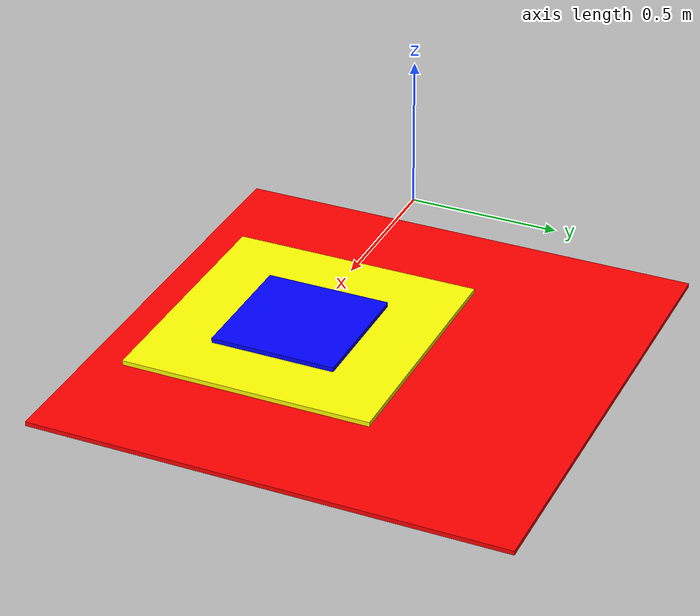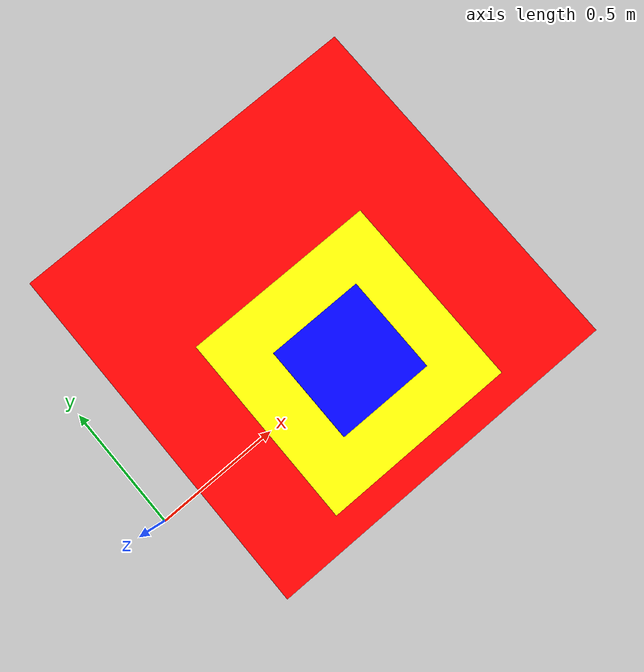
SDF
<?xml version="1.0" ?>
<sdf version="1.4">
  <!-- We use a custom world for the rrbot so that the camera angle is launched correctly -->

  <world name="default">

    <physics type="ode">
      <real_time_update_rate>1400</real_time_update_rate>
      <max_step_size>0.00075</max_step_size>
    </physics>

    <include>
      <uri>model://ground_plane</uri>
    </include>

    <include>
      <uri>model://FIRA_Ground</uri>
      <pose>1.75 0.15 0.001 0.0 0.0 1.5708</pose>
    </include>

    <!-- Global light source -->
    <include>
      <uri>model://sun</uri>
    </include>

    <include>
      <uri>model://red_box</uri>
      <pose>0.914738 0.25296 0.007476 0 0 0</pose>
    </include>

    <include>
      <uri>model://yellow_box</uri>
      <pose>0.888864 0.013663 0.022327 0 0 0</pose>
    </include>

    <include>
      <uri>model://blue_box</uri>
      <pose>0.892599 0.010009 0.037287 0 0 0</pose>
    </include>

    <!--plugin name="gazebo_ros_control" filename="libgazebo_ros_control.so"/-->
    <!--plugin name="kidsize" filename="libkidsize.so"/-->
  </world>
</sdf>

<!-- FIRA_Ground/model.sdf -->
<sdf version="1.4">
  <model name="FIRA_Ground">
    <pose>0 0 0.0001  0 0 0</pose>
     <static>true</static>
    <link name="link">
      <collision name="collision">
        <geometry>
          <mesh>
            <uri>model://FIRA_Ground/field_0407.DAE</uri>
          </mesh>
        </geometry>
      </collision>
      <visual name="visual">
        <geometry>
          <mesh>
            <uri>model://FIRA_Ground/field_0407.DAE</uri>
          </mesh>
        </geometry>
      </visual>
    </link>
  </model>
</sdf>

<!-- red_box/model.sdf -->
<sdf version='1.6'>
  <model name='red_box'>
    <link name='link'>
      <inertial>
        <mass>230.625</mass>
        <inertia>
          <ixx>43.2465</ixx>
          <ixy>0</ixy>
          <ixz>0</ixz>
          <iyy>43.2465</iyy>
          <iyz>0</iyz>
          <izz>86.4844</izz>
        </inertia>
        <pose frame=''>0 0 0 0 0 0</pose>
      </inertial>
      <self_collide>0</self_collide>
      <enable_wind>0</enable_wind>
      <kinematic>0</kinematic>
      <pose frame=''>0 0 0 0 0 0</pose>
      <gravity>1</gravity>
      <visual name='visual'>
        <geometry>
          <box>
            <size>1.5 1.5 0.015</size>
          </box>
        </geometry>
        <material>
          <script>
            <name>Gazebo/Grey</name>
            <uri>file://media/materials/scripts/gazebo.material</uri>
          </script>
          <shader type='pixel'>
            <normal_map>__default__</normal_map>
          </shader>
          <ambient>1 0 0 1</ambient>
          <diffuse>1 0 0 1</diffuse>
          <specular>0.01 0.01 0.01 1</specular>
          <emissive>0 0 0 1</emissive>
        </material>
        <pose frame=''>0 0 0 0 -0 0</pose>
        <transparency>0</transparency>
        <cast_shadows>1</cast_shadows>
      </visual>
      <collision name='collision'>
        <laser_retro>0</laser_retro>
        <max_contacts>10</max_contacts>
        <pose frame=''>0 0 0 0 -0 0</pose>
        <geometry>
          <box>
            <size>1.5 1.5 0.015</size>
          </box>
        </geometry>
        <surface>
          <friction>
            <ode>
              <mu>100</mu>
              <mu2>100</mu2>
              <fdir1>0 0 0</fdir1>
              <slip1>0</slip1>
              <slip2>0</slip2>
            </ode>
            <torsional>
              <coefficient>1</coefficient>
              <patch_radius>0</patch_radius>
              <surface_radius>0</surface_radius>
              <use_patch_radius>1</use_patch_radius>
              <ode>
                <slip>0</slip>
              </ode>
            </torsional>
          </friction>
          <bounce>
            <restitution_coefficient>0</restitution_coefficient>
            <threshold>1e+06</threshold>
          </bounce>
          <contact>
            <collide_without_contact>0</collide_without_contact>
            <collide_without_contact_bitmask>1</collide_without_contact_bitmask>
            <collide_bitmask>1</collide_bitmask>
            <ode>
              <soft_cfm>0</soft_cfm>
              <soft_erp>0.2</soft_erp>
              <kp>1e+12</kp>
              <kd>1</kd>
              <max_vel>0.01</max_vel>
              <min_depth>0</min_depth>
            </ode>
            <bullet>
              <split_impulse>1</split_impulse>
              <split_impulse_penetration_threshold>-0.01</split_impulse_penetration_threshold>
              <soft_cfm>0</soft_cfm>
              <soft_erp>0.2</soft_erp>
              <kp>1e+12</kp>
              <kd>1</kd>
            </bullet>
          </contact>
        </surface>
      </collision>
    </link>
    <static>0</static>
    <allow_auto_disable>1</allow_auto_disable>
  </model>
</sdf>

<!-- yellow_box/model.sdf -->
<sdf version='1.6'>
  <model name='yellow_box'>
    <link name='link'>
      <inertial>
        <mass>60.72</mass>
        <inertia>
          <ixx>3.23954</ixx>
          <ixy>0</ixy>
          <ixz>0</ixz>
          <iyy>3.23954</iyy>
          <iyz>0</iyz>
          <izz>6.4768</izz>
        </inertia>
        <pose frame=''>0 0 0 0 0 0</pose>
      </inertial>
      <self_collide>0</self_collide>
      <enable_wind>0</enable_wind>
      <kinematic>0</kinematic>
      <pose frame=''>0 0 0 0 0 0</pose>
      <gravity>1</gravity>
      <visual name='visual'>
        <geometry>
          <box>
            <size>0.8 0.8 0.015</size>
          </box>
        </geometry>
        <material>
          <script>
            <name>Gazebo/Grey</name>
            <uri>file://media/materials/scripts/gazebo.material</uri>
          </script>
          <shader type='pixel'>
            <normal_map>__default__</normal_map>
          </shader>
          <ambient>1 1 0 1</ambient>
          <diffuse>1 1 0 1</diffuse>
          <specular>0.01 0.01 0.01 1</specular>
          <emissive>0 0 0 1</emissive>
        </material>
        <pose frame=''>0 0 0 0 -0 0</pose>
        <transparency>0</transparency>
        <cast_shadows>1</cast_shadows>
      </visual>
      <collision name='collision'>
        <laser_retro>0</laser_retro>
        <max_contacts>10</max_contacts>
        <pose frame=''>0 0 0 0 -0 0</pose>
        <geometry>
          <box>
            <size>0.8 0.8 0.015</size>
          </box>
        </geometry>
        <surface>
          <friction>
            <ode>
              <mu>100</mu>
              <mu2>100</mu2>
              <fdir1>0 0 0</fdir1>
              <slip1>0</slip1>
              <slip2>0</slip2>
            </ode>
            <torsional>
              <coefficient>1</coefficient>
              <patch_radius>0</patch_radius>
              <surface_radius>0</surface_radius>
              <use_patch_radius>1</use_patch_radius>
              <ode>
                <slip>0</slip>
              </ode>
            </torsional>
          </friction>
          <bounce>
            <restitution_coefficient>0</restitution_coefficient>
            <threshold>1e+06</threshold>
          </bounce>
          <contact>
            <collide_without_contact>0</collide_without_contact>
            <collide_without_contact_bitmask>1</collide_without_contact_bitmask>
            <collide_bitmask>1</collide_bitmask>
            <ode>
              <soft_cfm>0</soft_cfm>
              <soft_erp>0.2</soft_erp>
              <kp>1e+12</kp>
              <kd>1</kd>
              <max_vel>0.01</max_vel>
              <min_depth>0</min_depth>
            </ode>
            <bullet>
              <split_impulse>1</split_impulse>
              <split_impulse_penetration_threshold>-0.01</split_impulse_penetration_threshold>
              <soft_cfm>0</soft_cfm>
              <soft_erp>0.2</soft_erp>
              <kp>1e+12</kp>
              <kd>1</kd>
            </bullet>
          </contact>
        </surface>
      </collision>
    </link>
    <static>0</static>
    <allow_auto_disable>1</allow_auto_disable>
  </model>
</sdf>

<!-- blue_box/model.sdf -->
<sdf version='1.6'>
  <model name='blue_box'>
    <link name='link'>
      <inertial>
        <mass>10.68</mass>
        <inertia>
          <ixx>0.1426</ixx>
          <ixy>0</ixy>
          <ixz>0</ixz>
          <iyy>0.1426</iyy>
          <iyz>0</iyz>
          <izz>0.2848</izz>
        </inertia>
        <pose frame=''>0 0 0 0 0 0</pose>
      </inertial>
      <self_collide>0</self_collide>
      <enable_wind>0</enable_wind>
      <kinematic>0</kinematic>
      <pose frame=''>0 0 0 0 0 0</pose>
      <gravity>1</gravity>
      <visual name='visual'>
        <geometry>
          <box>
            <size>0.4 0.4 0.015</size>
          </box>
        </geometry>
        <material>
          <script>
            <name>Gazebo/Grey</name>
            <uri>file://media/materials/scripts/gazebo.material</uri>
          </script>
          <shader type='pixel'>
            <normal_map>__default__</normal_map>
          </shader>
          <ambient>0 0 1 1</ambient>
          <diffuse>0 0 1 1</diffuse>
          <specular>0.01 0.01 0.01 1</specular>
          <emissive>0 0 0 1</emissive>
        </material>
        <pose frame=''>0 0 0 0 -0 0</pose>
        <transparency>0</transparency>
        <cast_shadows>1</cast_shadows>
      </visual>
      <collision name='collision'>
        <laser_retro>0</laser_retro>
        <max_contacts>10</max_contacts>
        <pose frame=''>0 0 0 0 -0 0</pose>
        <geometry>
          <box>
            <size>0.4 0.4 0.015</size>
          </box>
        </geometry>
        <surface>
          <friction>
            <ode>
              <mu>100</mu>
              <mu2>100</mu2>
              <fdir1>0 0 0</fdir1>
              <slip1>0</slip1>
              <slip2>0</slip2>
            </ode>
            <torsional>
              <coefficient>1</coefficient>
              <patch_radius>0</patch_radius>
              <surface_radius>0</surface_radius>
              <use_patch_radius>1</use_patch_radius>
              <ode>
                <slip>0</slip>
              </ode>
            </torsional>
          </friction>
          <bounce>
            <restitution_coefficient>0</restitution_coefficient>
            <threshold>1e+06</threshold>
          </bounce>
          <contact>
            <collide_without_contact>0</collide_without_contact>
            <collide_without_contact_bitmask>1</collide_without_contact_bitmask>
            <collide_bitmask>1</collide_bitmask>
            <ode>
              <soft_cfm>0</soft_cfm>
              <soft_erp>0.2</soft_erp>
              <kp>1e+12</kp>
              <kd>1</kd>
              <max_vel>0.01</max_vel>
              <min_depth>0</min_depth>
            </ode>
            <bullet>
              <split_impulse>1</split_impulse>
              <split_impulse_penetration_threshold>-0.01</split_impulse_penetration_threshold>
              <soft_cfm>0</soft_cfm>
              <soft_erp>0.2</soft_erp>
              <kp>1e+12</kp>
              <kd>1</kd>
            </bullet>
          </contact>
        </surface>
      </collision>
    </link>
    <static>0</static>
    <allow_auto_disable>1</allow_auto_disable>
  </model>
</sdf>
